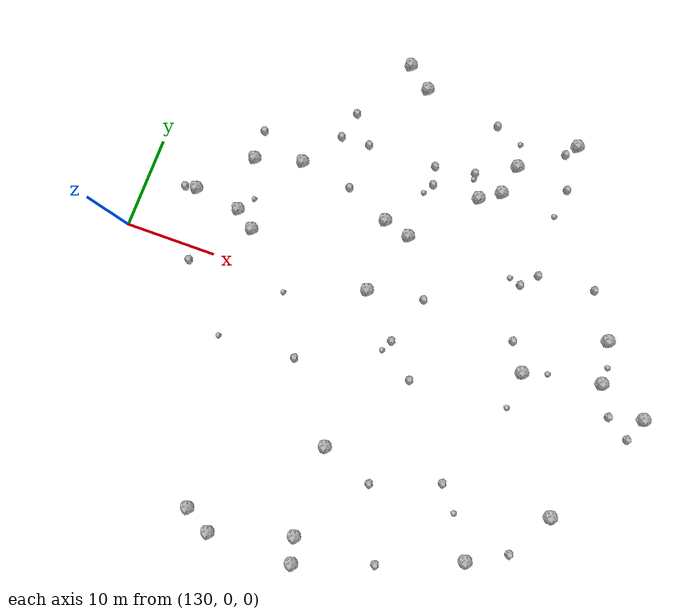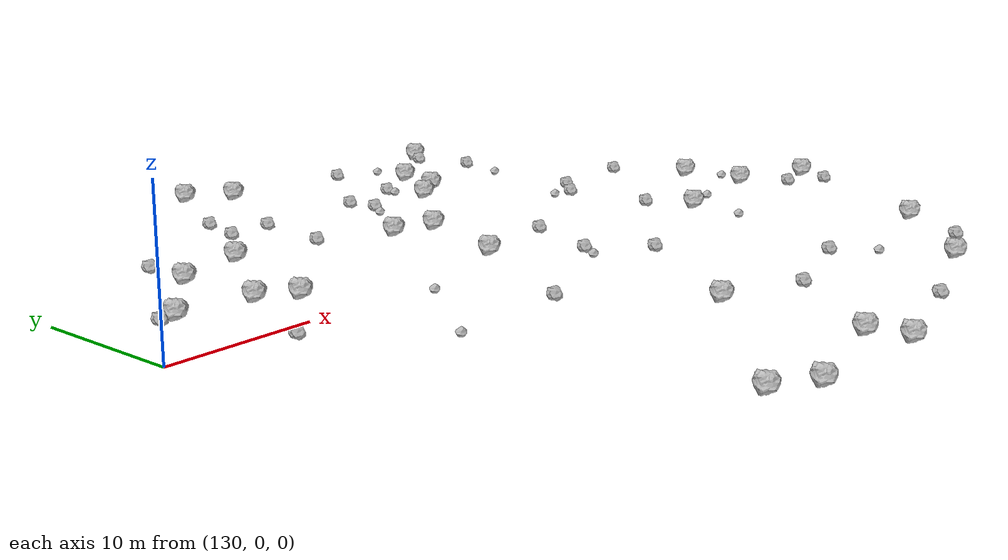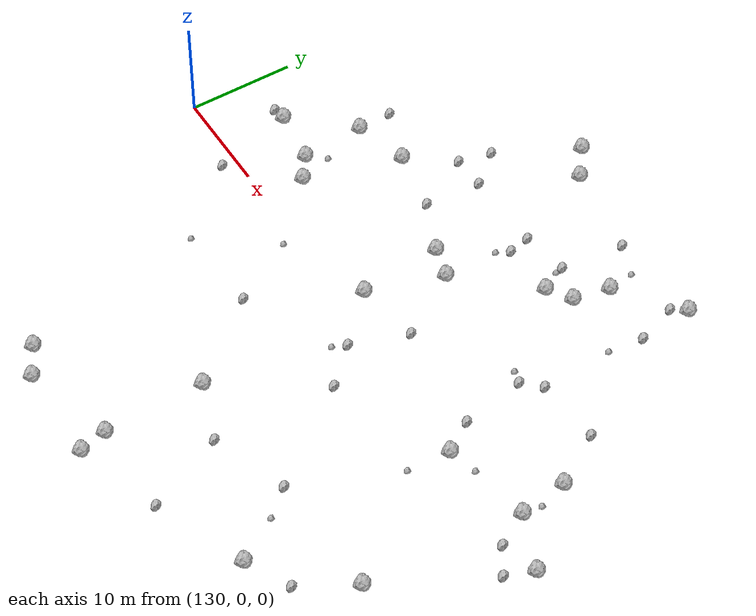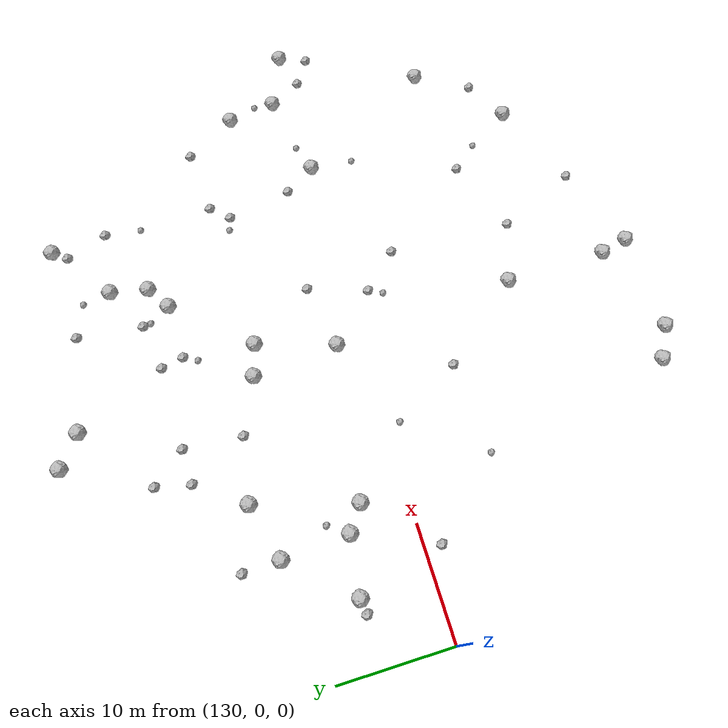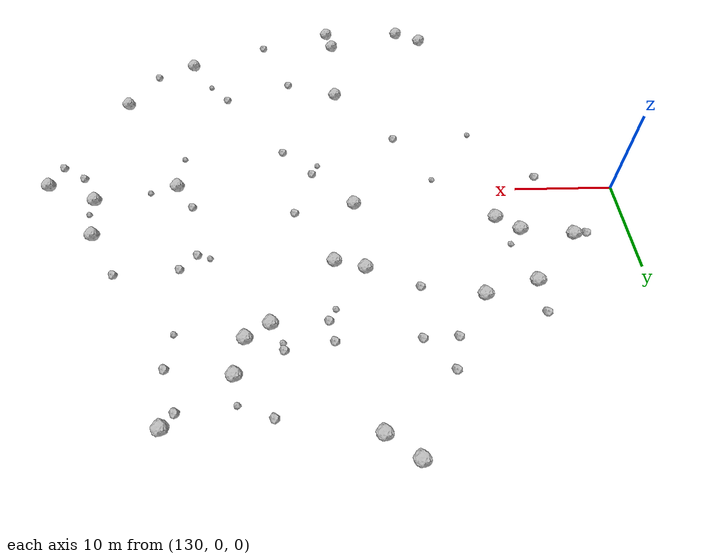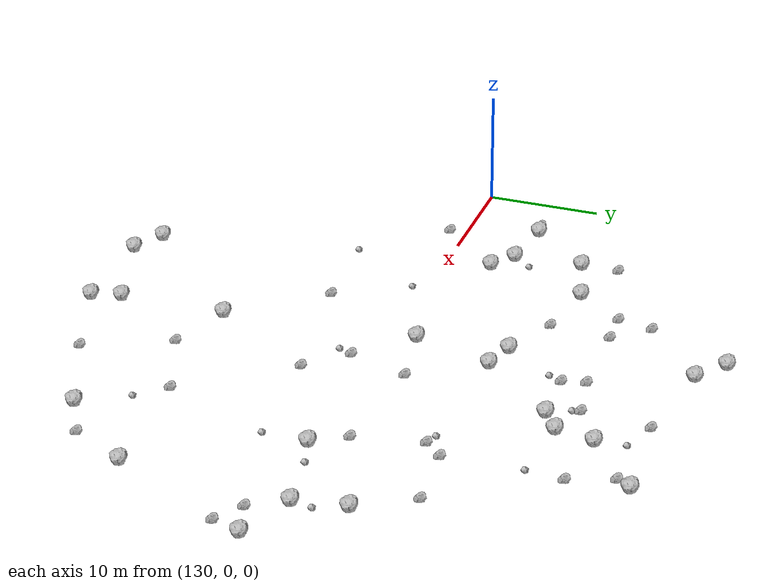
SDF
<sdf version="1.6">
 <world name="default">
  <include><uri>model://sun</uri></include>
  <model name="rock1_4_2">
   <include><uri>model://rock1</uri><pose>188.6784230403844 -1.3163329629868095 0.5 0 0 0</pose></include>
  </model>
  <model name="rock1_4_3">
   <include><uri>model://rock1</uri><pose>159.24599167705176 -26.95535558626758 0.5 0 0 0</pose></include>
  </model>
  <model name="rock1_4_4">
   <include><uri>model://rock1</uri><pose>153.02544298781683 27.483165540491747 0.5 0 0 0</pose></include>
  </model>
  <model name="rock1_4_5">
   <include><uri>model://rock1</uri><pose>165.00659371061786 15.465558398319189 0.5 0 0 0</pose></include>
  </model>
  <model name="rock1_4_6">
   <include><uri>model://rock1</uri><pose>167.18678182680412 16.866893484720045 0.5 0 0 0</pose></include>
  </model>
  <model name="rock1_4_7">
   <include><uri>model://rock1</uri><pose>147.35474972301975 -25.376977961429375 0.5 0 0 0</pose></include>
  </model>
  <model name="rock1_4_8">
   <include><uri>model://rock1</uri><pose>157.00686772101614 1.8709924293692382 0.5 0 0 0</pose></include>
  </model>
  <model name="rock1_4_9">
   <include><uri>model://rock1</uri><pose>182.8242757650182 5.269668955887113 0.5 0 0 0</pose></include>
  </model>
  <model name="rock1_4_10">
   <include><uri>model://rock1</uri><pose>156.28130295479144 9.725277456922065 0.5 0 0 0</pose></include>
  </model>
  <model name="rock1_4_11">
   <include><uri>model://rock1</uri><pose>182.50778803470115 -13.881120437379664 0.5 0 0 0</pose></include>
  </model>
  <model name="rock1_4_12">
   <include><uri>model://rock1</uri><pose>155.72569071915993 25.424593683920598 0.5 0 0 0</pose></include>
  </model>
  <model name="rock1_4_13">
   <include><uri>model://rock1</uri><pose>140.42464126292498 11.516934386811634 0.5 0 0 0</pose></include>
  </model>
  <model name="rock1_4_14">
   <include><uri>model://rock1</uri><pose>167.89093500986212 20.26472078626574 0.5 0 0 0</pose></include>
  </model>
  <model name="rock1_4_15">
   <include><uri>model://rock1</uri><pose>135.67129874981177 6.219396778544933 0.5 0 0 0</pose></include>
  </model>
  <model name="rock1_4_16">
   <include><uri>model://rock1</uri><pose>140.7979277484768 5.527331058408919 0.5 0 0 0</pose></include>
  </model>
  <model name="rock1_4_17">
   <include><uri>model://rock1</uri><pose>145.525954506223 12.905025671421996 0.5 0 0 0</pose></include>
  </model>
  <model name="rock1_4_18">
   <include><uri>model://rock1</uri><pose>183.50935404845475 0.7742475340089996 0.5 0 0 0</pose></include>
  </model>
  <model name="rock1_4_19">
   <include><uri>model://rock1</uri><pose>175.70885384489378 -20.86103105643229 0.5 0 0 0</pose></include>
  </model>
  <model name="rock1_4_20">
   <include><uri>model://rock1</uri><pose>150.1874650123405 -26.925527857013726 0.5 0 0 0</pose></include>
  </model>
  <model name="rock1_4_21">
   <include><uri>model://rock1</uri><pose>142.9746028925659 3.9710697347094026 0.5 0 0 0</pose></include>
  </model>
  <model name="rock1_4_22">
   <include><uri>model://rock1</uri><pose>158.6005617464317 -24.37847772062695 0.5 0 0 0</pose></include>
  </model>
  <model name="rock1_4_23">
   <include><uri>model://rock1</uri><pose>159.19006714420664 8.901368105775916 0.5 0 0 0</pose></include>
  </model>
  <model name="rock1_4_24">
   <include><uri>model://rock1</uri><pose>158.4542453552926 -14.991860904262506 0.5 0 0 0</pose></include>
  </model>
  <model name="rock1_4_25">
   <include><uri>model://rock1</uri><pose>173.4128326259173 24.657940841969342 0.5 0 0 0</pose></include>
  </model>
  <model name="rock1_4_26">
   <include><uri>model://rock1</uri><pose>175.2662814904199 -0.9336939619425024 0.5 0 0 0</pose></include>
  </model>
  <model name="rock2_4_0">
   <include><uri>model://rock2</uri><pose>173.3651217128084 1.9256178534588777 0.3 0 0 0</pose></include>
  </model>
  <model name="rock2_4_1">
   <include><uri>model://rock2</uri><pose>179.68478544950372 -18.765393496185048 0.3 0 0 0</pose></include>
  </model>
  <model name="rock2_4_2">
   <include><uri>model://rock2</uri><pose>148.53590917171294 17.069072046896878 0.3 0 0 0</pose></include>
  </model>
  <model name="rock2_4_3">
   <include><uri>model://rock2</uri><pose>137.78507680589757 -1.4347893286574767 0.3 0 0 0</pose></include>
  </model>
  <model name="rock2_4_4">
   <include><uri>model://rock2</uri><pose>159.82585530985946 15.289958430861851 0.3 0 0 0</pose></include>
  </model>
  <model name="rock2_4_5">
   <include><uri>model://rock2</uri><pose>159.3675612047527 17.31623360980734 0.3 0 0 0</pose></include>
  </model>
  <model name="rock2_4_6">
   <include><uri>model://rock2</uri><pose>152.2033210985392 -7.495387586386293 0.3 0 0 0</pose></include>
  </model>
  <model name="rock2_4_7">
   <include><uri>model://rock2</uri><pose>187.65433409350334 -3.8507180933198235 0.3 0 0 0</pose></include>
  </model>
  <model name="rock2_4_8">
   <include><uri>model://rock2</uri><pose>173.75026127966333 9.510548843674137 0.3 0 0 0</pose></include>
  </model>
  <model name="rock2_4_9">
   <include><uri>model://rock2</uri><pose>151.31974951822218 11.895172811499037 0.3 0 0 0</pose></include>
  </model>
  <model name="rock2_4_10">
   <include><uri>model://rock2</uri><pose>179.9089508445785 9.988668421852012 0.3 0 0 0</pose></include>
  </model>
  <model name="rock2_4_11">
   <include><uri>model://rock2</uri><pose>185.17850861516533 -2.2728931199669873 0.3 0 0 0</pose></include>
  </model>
  <model name="rock2_4_12">
   <include><uri>model://rock2</uri><pose>172.45647032062007 23.400529588522232 0.3 0 0 0</pose></include>
  </model>
  <model name="rock2_4_13">
   <include><uri>model://rock2</uri><pose>164.39117734390146 -5.627467180551278 0.3 0 0 0</pose></include>
  </model>
  <model name="rock2_4_14">
   <include><uri>model://rock2</uri><pose>164.38722821498845 24.011720563578947 0.3 0 0 0</pose></include>
  </model>
  <model name="rock2_4_15">
   <include><uri>model://rock2</uri><pose>173.82315446407904 19.606467358036433 0.3 0 0 0</pose></include>
  </model>
  <model name="rock2_4_16">
   <include><uri>model://rock2</uri><pose>163.74661059514727 18.06170122322223 0.3 0 0 0</pose></include>
  </model>
  <model name="rock2_4_17">
   <include><uri>model://rock2</uri><pose>134.33366131584148 6.048072459894854 0.3 0 0 0</pose></include>
  </model>
  <model name="rock2_4_18">
   <include><uri>model://rock2</uri><pose>163.00686833093633 2.9250381266942043 0.3 0 0 0</pose></include>
  </model>
  <model name="rock2_4_19">
   <include><uri>model://rock2</uri><pose>140.26082664738558 14.832861149770714 0.3 0 0 0</pose></include>
  </model>
  <model name="rock2_4_20">
   <include><uri>model://rock2</uri><pose>172.23387116388358 7.897847205667986 0.3 0 0 0</pose></include>
  </model>
  <model name="rock2_4_21">
   <include><uri>model://rock2</uri><pose>149.21046233955283 20.162628850757258 0.3 0 0 0</pose></include>
  </model>
  <model name="rock2_4_22">
   <include><uri>model://rock2</uri><pose>161.24434317393596 -2.3738662714721137 0.3 0 0 0</pose></include>
  </model>
  <model name="rock2_4_23">
   <include><uri>model://rock2</uri><pose>167.23924976404223 -24.27022807013131 0.3 0 0 0</pose></include>
  </model>
  <model name="rock2_4_24">
   <include><uri>model://rock2</uri><pose>163.98357379560693 -16.983128373135976 0.3 0 0 0</pose></include>
  </model>
  <model name="rock2_4_25">
   <include><uri>model://rock2</uri><pose>151.7123732009927 17.18504155836817 0.3 0 0 0</pose></include>
  </model>
  <model name="rock2_4_26">
   <include><uri>model://rock2</uri><pose>171.06743634418768 -14.424165392735857 0.3 0 0 0</pose></include>
  </model>
  <model name="rock3_4_0">
   <include><uri>model://rock3</uri><pose>148.5915658793414 -1.3644811364585578 0.2 0 0 0</pose></include>
  </model>
  <model name="rock3_4_1">
   <include><uri>model://rock3</uri><pose>143.77454342466132 -8.0120616782289 0.2 0 0 0</pose></include>
  </model>
  <model name="rock3_4_2">
   <include><uri>model://rock3</uri><pose>160.6257936945596 -3.644827674777094 0.2 0 0 0</pose></include>
  </model>
  <model name="rock3_4_3">
   <include><uri>model://rock3</uri><pose>174.91455690568714 -4.941633080704602 0.2 0 0 0</pose></include>
  </model>
  <model name="rock3_4_4">
   <include><uri>model://rock3</uri><pose>141.9611210702343 7.184281622847578 0.2 0 0 0</pose></include>
  </model>
  <model name="rock3_4_5">
   <include><uri>model://rock3</uri><pose>163.8275601798473 17.332738164057147 0.2 0 0 0</pose></include>
  </model>
  <model name="rock3_4_6">
   <include><uri>model://rock3</uri><pose>173.1270288921367 -16.875176656418752 0.2 0 0 0</pose></include>
  </model>
  <model name="rock3_4_7">
   <include><uri>model://rock3</uri><pose>167.4198519193817 22.830301724691864 0.2 0 0 0</pose></include>
  </model>
  <model name="rock3_4_8">
   <include><uri>model://rock3</uri><pose>170.96859037371254 8.251673072675139 0.2 0 0 0</pose></include>
  </model>
  <model name="rock3_4_9">
   <include><uri>model://rock3</uri><pose>183.63427379862438 2.5682878982549227 0.2 0 0 0</pose></include>
  </model>
  <model name="rock3_4_10">
   <include><uri>model://rock3</uri><pose>173.3997018000837 16.27845647865734 0.2 0 0 0</pose></include>
  </model>
  <model name="rock3_4_11">
   <include><uri>model://rock3</uri><pose>159.1549139531246 14.067673542107713 0.2 0 0 0</pose></include>
  </model>
  <model name="rock3_4_12">
   <include><uri>model://rock3</uri><pose>177.88658881225507 -0.18158033160690934 0.2 0 0 0</pose></include>
  </model>
 </world>
</sdf>
